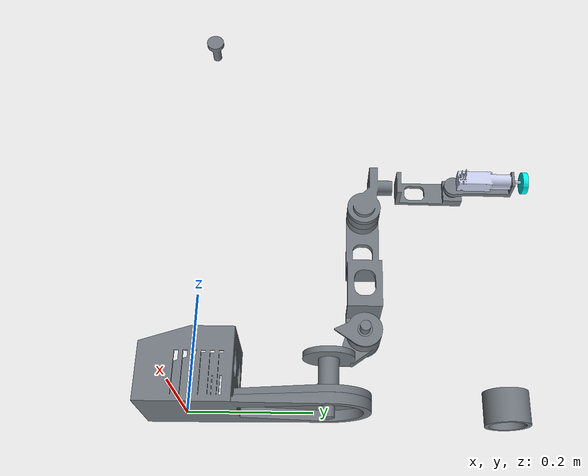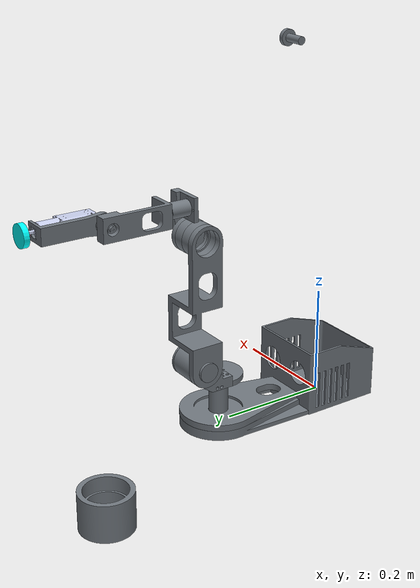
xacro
<?xml version="1.0"?>
<robot xmlns:xacro="http://www.ros.org/wiki/xacro" name="BuddyArm">

  <!--
  =============================================================
                              MACROs
  =============================================================
  -->
  <xacro:property name="kgm2" value="1e-9" />

  <!-- Params: box: depth/width/heigh, origin: xyz and rotation: roll pitch yaw -->
  <xacro:macro name="collision_ele" params="d w h x y z roll pitch yaw">
    <collision>
      <geometry>
        <box size="${d} ${w} ${h}"/>
      </geometry>
      <origin rpy="${roll} ${pitch} ${yaw}" xyz="${x} ${y} ${z}"/>
    </collision>
  </xacro:macro>

  <!-- Params: origin: xyz (in m), mass: mass (in kg) and moments of inertia: i (in g*mm^2) -->
  <xacro:macro name="inertial_ele" params="x y z roll pitch yaw mass ixx ixy ixz iyy iyz izz">
    <inertial>
      <origin xyz="${x} ${y} ${z}" rpy="${roll} ${pitch} ${yaw}"/>
      <mass value="${mass}"/>
      <inertia ixx="${ixx * kgm2}" ixy="${ixy * kgm2}" ixz="${ixz * kgm2}" iyy="${iyy * kgm2}" iyz="${iyz * kgm2}" izz="${izz * kgm2}"/>
    </inertial>
  </xacro:macro>

  <link name="world"/>

  <link name="mcu_base_link">
    <visual>
      <geometry>
        <mesh filename="package://buddyarm_urdf/mesh/buddy_arm-Base.dae"/>
      </geometry>
    </visual>
    <visual>
      <geometry>
        <mesh filename="package://buddyarm_urdf/mesh/buddy_arm-J1_Base.dae"/>
      </geometry>
      <origin xyz="0 0.075 0.018"/>
    </visual>
    <visual>
      <geometry>
        <mesh filename="package://buddyarm_urdf/mesh/buddy_arm-J1_Turret_Housing.dae"/>
      </geometry>
      <origin xyz="0 0.225 0.025"/>
    </visual>
    <xacro:inertial_ele x="0" y="0.1243" z="0.0332" roll="0" pitch="0" yaw="0" mass="2.25" ixx="14394179" ixy="0" ixz="0" iyy="5065300" iyz="1391178" izz="16481870"/>
    <xacro:collision_ele d="0.150" w="0.370" h="0.018" x="0" y="0.110" z="0.009" roll="0" pitch="0" yaw="0"/>
  </link>

  <link name="j1_spindle_link">
    <visual>
      <geometry>
        <mesh filename="package://buddyarm_urdf/mesh/buddy_arm-J1_Spindle.dae"/>
      </geometry>
    </visual>
    <visual>
      <geometry>
        <mesh filename="package://buddyarm_urdf/mesh/buddy_arm-J1_Platform.dae"/>
      </geometry>
      <origin xyz="0 0 0.097"/>
    </visual>
    <visual>
      <geometry>
        <mesh filename="package://buddyarm_urdf/mesh/buddy_arm-J2_Turret_Housing.dae"/>
      </geometry>
      <origin rpy="${pi/2} -0.000000 ${-pi/2}" xyz="-0.0210 0.0200 0.0970"/>
    </visual>
    <xacro:inertial_ele x="-0.0081" y="0.0161" z="0.0945" roll="0" pitch="0" yaw="0" mass="0.548" ixx="175332" ixy="0" ixz="-613" iyy="175485" iyz="0" izz="32314"/>
    <xacro:collision_ele d="0.089" w="0.089" h="0.064" x="0" y="0" z="0.064" roll="0" pitch="0" yaw="0"/>
  </link>

  <link name="j2_spindle_link">
    <visual>
      <geometry>
        <mesh filename="package://buddyarm_urdf/mesh/buddy_arm-J2_Spindle.dae"/>
      </geometry>
    </visual>
    <visual>
      <geometry>
        <mesh filename="package://buddyarm_urdf/mesh/buddy_arm-J2_Tension_Ring.dae"/>
      </geometry>
      <origin rpy="${-pi} -0.000000 0.000000" xyz="0.0000 -0.0000 0.0710"/>
    </visual>
    <visual>
      <geometry>
        <mesh filename="package://buddyarm_urdf/mesh/buddy_arm-J2_Arm.dae"/>
      </geometry>
      <origin rpy="0.000000 ${-pi/2} -0.000000" xyz="0.0300 -0.0300 0.0050"/>
    </visual>
    <visual>
      <geometry>
        <mesh filename="package://buddyarm_urdf/mesh/buddy_arm-J3_Bearing_Cup.dae"/>
      </geometry>
      <origin rpy="${-pi} 0.000000 ${pi/2}" xyz="0.0000 0.2330 0.0370"/>
    </visual>
    <xacro:inertial_ele x="-0.0002" y="0.0870" z="0.0344" roll="0" pitch="${-pi/2}" yaw="${-pi/2}" mass="0.803" ixx="18023" ixy="0" ixz="0" iyy="6903" iyz="-279" izz="11196"/>
    <xacro:collision_ele d="0.076" w="0.163" h="0.060" x="0" y="0.1152" z="0.0432" roll="0" pitch="${-pi/2}" yaw="0"/>
  </link>

  <link name="j3_spindle_link">
    <visual>
      <geometry>
        <mesh filename="package://buddyarm_urdf/mesh/buddy_arm-J3_Spindle.dae"/>
      </geometry>
    </visual>
    <visual>
      <geometry>
        <mesh filename="package://buddyarm_urdf/mesh/buddy_arm-J4_Turret_Housing.dae"/>
      </geometry>
      <origin rpy="${-pi} 0 0" xyz="0 0 0"/>
    </visual>
    <xacro:inertial_ele x="-0.0177" y="-0.0071" z="-0.0088" roll="0" pitch="${pi/2}" yaw="${-pi}" mass="0.284" ixx="38381" ixy="0" ixz="0" iyy="23140" iyz="0" izz="23140"/>
    <xacro:collision_ele d="0.060" w="0.042" h="0.044" x="-0.0570" y="-0.0320" z="0.0100" roll="0" pitch="${-pi/2}" yaw="${pi/2}"/>
  </link>

  <link name="j4_spindle_link">
    <visual>
      <geometry>
        <mesh filename="package://buddyarm_urdf/mesh/buddy_arm-J4_Spindle.dae"/>
      </geometry>
    </visual>
    <visual>
      <geometry>
        <mesh filename="package://buddyarm_urdf/mesh/buddy_arm-J5_Arm.dae"/>
      </geometry>
      <origin rpy="${-pi/2} -0.000000 ${pi/2}" xyz="0.0210 -0.0170 -0.0000"/>
    </visual>
    <xacro:inertial_ele x="0" y="-0.0105" z="-0.0464" roll="${-pi/2}" pitch="0" yaw="${pi/2}" mass="0.187" ixx="6949" ixy="0" ixz="0" iyy="2200" iyz="0" izz="6949"/>
    <xacro:collision_ele d="0.125" w="0.042" h="0.020" x="0" y="-0.0150" z="-0.0624" roll="0" pitch="${-pi/2}" yaw="${-pi/2}"/>
  </link>

  <link name="j5_spindle_link">
    <visual>
      <geometry>
        <mesh filename="package://buddyarm_urdf/mesh/buddy_arm-J5_Spindle.dae"/>
      </geometry>
    </visual>
    <visual>
      <geometry>
        <mesh filename="package://buddyarm_urdf/mesh/buddy_arm-J6_Arm.dae"/>
      </geometry>
      <origin rpy="0.000000 -0.000000 0.000000" xyz="0.0000 -0.0000 0.0250"/>
    </visual>
    <visual>
      <geometry>
        <mesh filename="package://buddyarm_urdf/mesh/buddy_arm-11HS20-0674D-EGS16-J6-Motor.dae"/>
      </geometry>
      <origin rpy="${-pi/2} -0.000000 ${pi/2}" xyz="0.0620 0.0019 0.0512"/>
    </visual>
    <xacro:inertial_ele x="0.0473" y="0.0010" z="0.0420" roll="0" pitch="${-pi/2}" yaw="${-pi/2}" mass="0.331" ixx="1843" ixy="0" ixz="0" iyy="2320" iyz="0" izz="2320"/>
    <xacro:collision_ele d="0.042" w="0.030" h="0.126" x="0.0450" y="0" z="0.0460" roll="0" pitch="${-pi/2}" yaw="${-pi}"/>
  </link>

  <link name="end_effector">
    <visual>
      <geometry>
        <cylinder length="0.01" radius="0.02"/>
      </geometry>
      <material name="Cyan">
        <color rgba="0 1.0 1.0 1.0"/>
      </material>
    </visual>
    <collision>
      <geometry>
        <cylinder length="0.01" radius="0.02"/>
      </geometry>
    </collision>
    <xacro:inertial_ele x="0" y="0" z="0" roll="${-pi/2}" pitch="0" yaw="${pi/2}" mass="0.033" ixx="3675" ixy="0" ixz="0" iyy="6785" iyz="0" izz="3675"/>
  </link>

  <joint name="base" type="fixed">
      <parent link="world"/>
      <child link="mcu_base_link"/>
  </joint>

  <joint name="j1" type="revolute">
    <parent link="mcu_base_link"/>
    <child link="j1_spindle_link"/>
    <origin rpy="0.000000 -0.000000 0.000000" xyz="0.0000 0.2250 -0.0070"/>
    <axis xyz="0 0 1"/>
    <limit lower="${-pi/2}" upper="${pi/2}" effort="1000.0" velocity="1.0"/>
  </joint>

  <joint name="j2" type="revolute">
    <parent link="j1_spindle_link"/>
    <child link="j2_spindle_link"/>
    <origin rpy="${pi/2} -0.000000 ${pi/2}" xyz="-0.0610 0.0600 0.1470"/>
    <axis xyz="0 0 1"/>
    <limit lower="${-pi/7}" upper="${pi/2}" effort="1000.0" velocity="1.0"/>
  </joint>

  <joint name="j3" type="revolute">
    <parent link="j2_spindle_link"/>
    <child link="j3_spindle_link"/>
    <origin rpy="${pi} -0.000000 ${-pi/2}" xyz="0.0000 0.2330 0.0570"/>
    <axis xyz="0 0 1"/>
    <limit lower="${-pi/2}" upper="${pi/2}" effort="1000.0" velocity="1.0"/>
  </joint>

  <joint name="j4" type="revolute">
    <parent link="j3_spindle_link"/>
    <child link="j4_spindle_link"/>
    <origin rpy="${-pi/2} -0.000000 0.000000" xyz="-0.0570 -0.0620 0.0190"/>
    <axis xyz="0 0 1"/>
    <limit lower="${-pi * 1.5}" upper="${pi * 1.5}" effort="1000.0" velocity="1.0"/>
  </joint>

  <joint name="j5" type="revolute">
    <parent link="j4_spindle_link"/>
    <child link="j5_spindle_link"/>
    <origin rpy="0.000000 ${pi/2} ${pi/2}" xyz="-0.0000 -0.0200 -0.1075"/>
    <axis xyz="0 0 1"/>
    <limit lower="${-pi/2}" upper="${pi/2}" effort="1000.0" velocity="1.0"/>
  </joint>

  <joint name="j6" type="revolute">
    <parent link="j5_spindle_link"/>
    <child link="end_effector"/>
    <origin rpy="${pi/2} -0.000000 ${-pi/2}" xyz="0.1280 -0.0000 0.0510"/>
    <axis xyz="0 0 1"/>
    <limit lower="${-pi/2}" upper="${pi/2}" effort="1000.0" velocity="1.0"/>
  </joint>

</robot>
